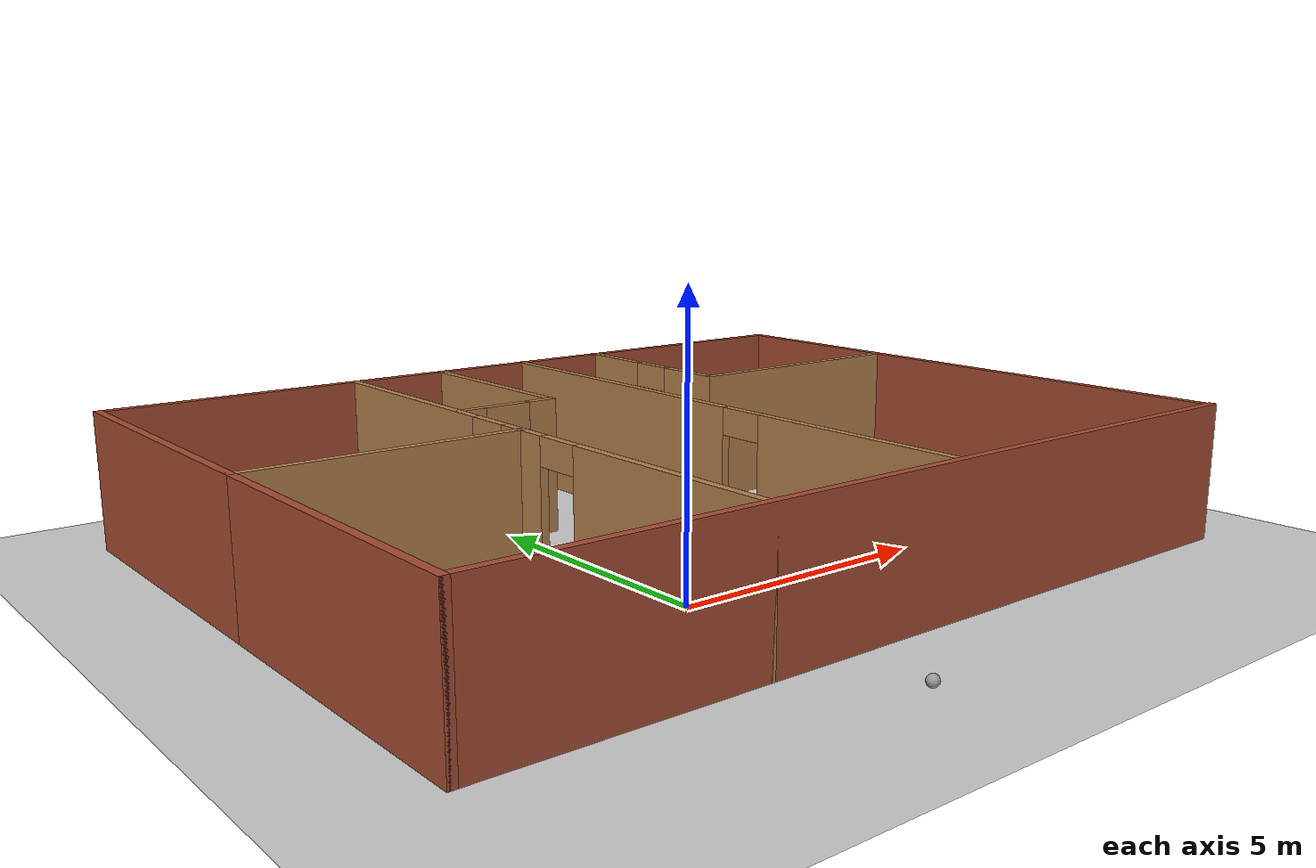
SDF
<sdf version="1.6">
 <world name="default">
  <light name="sun" type="directional">
   <pose>0 0 10 0 -0 0</pose>
   <diffuse>0.8 0.8 0.8 1</diffuse>
   <specular>0.2 0.2 0.2 1</specular>
   <attenuation>
    <range>1000</range>
    <constant>0.9</constant>
    <linear>0.01</linear>
    <quadratic>0.001</quadratic>
   </attenuation>
   <direction>-0.5 0.1 -0.9</direction>
  </light>
  <model name="ground_plane">
   <static>1</static>
   <link name="link">
    <collision name="collision">
     <geometry><plane><normal>0 0 1</normal><size>100 100</size></plane></geometry>
     <surface><friction><ode><mu>100</mu><mu2>50</mu2></ode></friction></surface>
    </collision>
    <visual name="visual">
     <cast_shadows>0</cast_shadows>
     <geometry><plane><normal>0 0 1</normal><size>100 100</size></plane></geometry>
     <material>
      <script><uri>file://media/materials/scripts/gazebo.material</uri><name>Gazebo/Grey</name></script>
     </material>
    </visual>
   </link>
  </model>
  <gravity>0 0 -9.8</gravity>
  <magnetic_field>6e-06 2.3e-05 -4.2e-05</magnetic_field>
  <atmosphere type="adiabatic"/>
  <physics name="default_physics" default="0" type="ode">
   <max_step_size>0.001</max_step_size>
   <real_time_factor>1</real_time_factor>
   <real_time_update_rate>1000</real_time_update_rate>
  </physics>
  <scene><ambient>0.4 0.4 0.4 1</ambient><background>0.7 0.7 0.7 1</background><shadows>1</shadows></scene>
  <spherical_coordinates>
   <surface_model>EARTH_WGS84</surface_model>
   <latitude_deg>0</latitude_deg>
   <longitude_deg>0</longitude_deg>
   <elevation>0</elevation>
   <heading_deg>0</heading_deg>
  </spherical_coordinates>
  <model name="home">
   <pose>1.85688 2.8893 0 0 -0 0</pose>
   <link name="Wall_1">
    <collision name="Wall_1_Collision">
     <geometry><box><size>6.0004 0.15 2.5</size></box></geometry>
     <pose>0 0 1.25 0 -0 0</pose>
    </collision>
    <visual name="Wall_1_Visual">
     <pose>0 0 1.25 0 -0 0</pose>
     <geometry><box><size>6.0004 0.15 2.5</size></box></geometry>
     <material>
      <script><uri>file://media/materials/scripts/gazebo.material</uri><name>Gazebo/Bricks</name></script>
      <ambient>1 1 1 1</ambient>
     </material>
     <meta><layer>0</layer></meta>
    </visual>
    <pose>-7.8 2.9156 0 0 0 -1.5708</pose>
   </link>
   <link name="Wall_12">
    <collision name="Wall_12_Collision">
     <geometry><box><size>4 0.15 2.5</size></box></geometry>
     <pose>0 0 1.25 0 -0 0</pose>
    </collision>
    <visual name="Wall_12_Visual">
     <pose>0 0 1.25 0 -0 0</pose>
     <geometry><box><size>4 0.15 2.5</size></box></geometry>
     <material>
      <script><uri>file://media/materials/scripts/gazebo.material</uri><name>Gazebo/Wood</name></script>
      <ambient>1 1 1 1</ambient>
     </material>
     <meta><layer>0</layer></meta>
    </visual>
    <pose>-1.03717 3.90694 0 0 0 -1.5708</pose>
   </link>
   <link name="Wall_13">
    <pose>-1.96217 1.98194 0 0 -0 3.14159</pose>
    <visual name="Wall_13_Visual_0">
     <pose>-0.71811 0 1.25 0 -0 0</pose>
     <geometry><box><size>0.56378 0.15 2.5</size></box></geometry>
     <material>
      <script><uri>file://media/materials/scripts/gazebo.material</uri><name>Gazebo/Wood</name></script>
      <ambient>1 1 1 1</ambient>
     </material>
     <meta><layer>0</layer></meta>
    </visual>
    <collision name="Wall_13_Collision_0">
     <geometry><box><size>0.56378 0.15 2.5</size></box></geometry>
     <pose>-0.71811 0 1.25 0 -0 0</pose>
    </collision>
    <visual name="Wall_13_Visual_1">
     <pose>0.73189 0 1.25 0 -0 0</pose>
     <geometry><box><size>0.53622 0.15 2.5</size></box></geometry>
     <material>
      <script><uri>file://media/materials/scripts/gazebo.material</uri><name>Gazebo/Wood</name></script>
      <ambient>1 1 1 1</ambient>
     </material>
     <meta><layer>0</layer></meta>
    </visual>
    <collision name="Wall_13_Collision_1">
     <geometry><box><size>0.53622 0.15 2.5</size></box></geometry>
     <pose>0.73189 0 1.25 0 -0 0</pose>
    </collision>
    <visual name="Wall_13_Visual_2">
     <pose>0.01378 0 2.25 0 -0 0</pose>
     <geometry><box><size>0.9 0.15 0.5</size></box></geometry>
     <material>
      <script><uri>file://media/materials/scripts/gazebo.material</uri><name>Gazebo/Wood</name></script>
      <ambient>1 1 1 1</ambient>
     </material>
     <meta><layer>0</layer></meta>
    </visual>
    <collision name="Wall_13_Collision_2">
     <geometry><box><size>0.9 0.15 0.5</size></box></geometry>
     <pose>0.01378 0 2.25 0 -0 0</pose>
    </collision>
   </link>
   <link name="Wall_2">
    <collision name="Wall_2_Collision">
     <geometry><box><size>5 0.15 2.5</size></box></geometry>
     <pose>0 0 1.25 0 -0 0</pose>
    </collision>
    <visual name="Wall_2_Visual">
     <pose>0 0 1.25 0 -0 0</pose>
     <geometry><box><size>5 0.15 2.5</size></box></geometry>
     <material>
      <script><uri>file://media/materials/scripts/gazebo.material</uri><name>Gazebo/Wood</name></script>
      <ambient>1 1 1 1</ambient>
     </material>
     <meta><layer>0</layer></meta>
    </visual>
    <pose>-5.375 -0.009397 0 0 -0 0</pose>
   </link>
   <link name="Wall_21">
    <collision name="Wall_21_Collision">
     <geometry><box><size>11.75 0.15 2.5</size></box></geometry>
     <pose>0 0 1.25 0 -0 0</pose>
    </collision>
    <visual name="Wall_21_Visual">
     <pose>0 0 1.25 0 -0 0</pose>
     <geometry><box><size>11.75 0.15 2.5</size></box></geometry>
     <material>
      <script><uri>file://media/materials/scripts/gazebo.material</uri><name>Gazebo/Bricks</name></script>
      <ambient>1 1 1 1</ambient>
     </material>
     <meta><layer>0</layer></meta>
    </visual>
    <pose>7.74432 0.044867 0 0 0 -1.5708</pose>
   </link>
   <link name="Wall_26">
    <collision name="Wall_26_Collision">
     <geometry><box><size>6 0.15 2.5</size></box></geometry>
     <pose>0 0 1.25 0 -0 0</pose>
    </collision>
    <visual name="Wall_26_Visual">
     <pose>0 0 1.25 0 -0 0</pose>
     <geometry><box><size>6 0.15 2.5</size></box></geometry>
     <material>
      <script><uri>file://media/materials/scripts/gazebo.material</uri><name>Gazebo/Bricks</name></script>
      <ambient>1 1 1 1</ambient>
     </material>
     <meta><layer>0</layer></meta>
    </visual>
    <pose>-7.8 -2.9344 0 0 0 -1.5708</pose>
   </link>
   <link name="Wall_28">
    <collision name="Wall_28_Collision">
     <geometry><box><size>15.75 0.15 2.5</size></box></geometry>
     <pose>0 0 1.25 0 -0 0</pose>
    </collision>
    <visual name="Wall_28_Visual">
     <pose>0 0 1.25 0 -0 0</pose>
     <geometry><box><size>15.75 0.15 2.5</size></box></geometry>
     <material>
      <script><uri>file://media/materials/scripts/gazebo.material</uri><name>Gazebo/Bricks</name></script>
      <ambient>1 1 1 1</ambient>
     </material>
     <meta><layer>0</layer></meta>
    </visual>
    <pose>0 -5.8594 0 0 -0 0</pose>
   </link>
   <link name="Wall_30">
    <pose>-2.95 -2.9344 0 0 0 -1.5708</pose>
    <visual name="Wall_30_Visual_0">
     <pose>-2.64613 0 1.25 0 -0 0</pose>
     <geometry><box><size>0.70775 0.15 2.5</size></box></geometry>
     <material>
      <script><uri>file://media/materials/scripts/gazebo.material</uri><name>Gazebo/Wood</name></script>
      <ambient>1 1 1 1</ambient>
     </material>
     <meta><layer>0</layer></meta>
    </visual>
    <collision name="Wall_30_Collision_0">
     <geometry><box><size>0.70775 0.15 2.5</size></box></geometry>
     <pose>-2.64613 0 1.25 0 -0 0</pose>
    </collision>
    <visual name="Wall_30_Visual_1">
     <pose>0.803875 0 1.25 0 -0 0</pose>
     <geometry><box><size>4.39225 0.15 2.5</size></box></geometry>
     <material>
      <script><uri>file://media/materials/scripts/gazebo.material</uri><name>Gazebo/Wood</name></script>
      <ambient>1 1 1 1</ambient>
     </material>
     <meta><layer>0</layer></meta>
    </visual>
    <collision name="Wall_30_Collision_1">
     <geometry><box><size>4.39225 0.15 2.5</size></box></geometry>
     <pose>0.803875 0 1.25 0 -0 0</pose>
    </collision>
    <visual name="Wall_30_Visual_2">
     <pose>-1.84225 0 2.25 0 -0 0</pose>
     <geometry><box><size>0.9 0.15 0.5</size></box></geometry>
     <material>
      <script><uri>file://media/materials/scripts/gazebo.material</uri><name>Gazebo/Wood</name></script>
      <ambient>1 1 1 1</ambient>
     </material>
     <meta><layer>0</layer></meta>
    </visual>
    <collision name="Wall_30_Collision_2">
     <geometry><box><size>0.9 0.15 0.5</size></box></geometry>
     <pose>-1.84225 0 2.25 0 -0 0</pose>
    </collision>
   </link>
   <link name="Wall_34">
    <pose>0.909947 0.059397 0 0 0 -1.5708</pose>
    <visual name="Wall_34_Visual_0">
     <pose>-2.58673 0 1.25 0 -0 0</pose>
     <geometry><box><size>6.57654 0.15 2.5</size></box></geometry>
     <material>
      <script><uri>file://media/materials/scripts/gazebo.material</uri><name>Gazebo/Wood</name></script>
      <ambient>1 1 1 1</ambient>
     </material>
     <meta><layer>0</layer></meta>
    </visual>
    <collision name="Wall_34_Collision_0">
     <geometry><box><size>6.57654 0.15 2.5</size></box></geometry>
     <pose>-2.58673 0 1.25 0 -0 0</pose>
    </collision>
    <visual name="Wall_34_Visual_1">
     <pose>3.73827 0 1.25 0 -0 0</pose>
     <geometry><box><size>4.27346 0.15 2.5</size></box></geometry>
     <material>
      <script><uri>file://media/materials/scripts/gazebo.material</uri><name>Gazebo/Wood</name></script>
      <ambient>1 1 1 1</ambient>
     </material>
     <meta><layer>0</layer></meta>
    </visual>
    <collision name="Wall_34_Collision_1">
     <geometry><box><size>4.27346 0.15 2.5</size></box></geometry>
     <pose>3.73827 0 1.25 0 -0 0</pose>
    </collision>
    <visual name="Wall_34_Visual_2">
     <pose>1.15154 0 2.25 0 -0 0</pose>
     <geometry><box><size>0.9 0.15 0.5</size></box></geometry>
     <material>
      <script><uri>file://media/materials/scripts/gazebo.material</uri><name>Gazebo/Wood</name></script>
      <ambient>1 1 1 1</ambient>
     </material>
     <meta><layer>0</layer></meta>
    </visual>
    <collision name="Wall_34_Collision_2">
     <geometry><box><size>0.9 0.15 0.5</size></box></geometry>
     <pose>1.15154 0 2.25 0 -0 0</pose>
    </collision>
   </link>
   <link name="Wall_38">
    <pose>2.83947 3.92239 0 0 0 -1.5708</pose>
    <visual name="Wall_38_Visual_0">
     <pose>-1.1744 0 1.25 0 -0 0</pose>
     <geometry><box><size>1.6512 0.15 2.5</size></box></geometry>
     <material>
      <script><uri>file://media/materials/scripts/gazebo.material</uri><name>Gazebo/Wood</name></script>
      <ambient>1 1 1 1</ambient>
     </material>
     <meta><layer>0</layer></meta>
    </visual>
    <collision name="Wall_38_Collision_0">
     <geometry><box><size>1.6512 0.15 2.5</size></box></geometry>
     <pose>-1.1744 0 1.25 0 -0 0</pose>
    </collision>
    <visual name="Wall_38_Visual_1">
     <pose>1.2756 0 1.25 0 -0 0</pose>
     <geometry><box><size>1.4488 0.15 2.5</size></box></geometry>
     <material>
      <script><uri>file://media/materials/scripts/gazebo.material</uri><name>Gazebo/Wood</name></script>
      <ambient>1 1 1 1</ambient>
     </material>
     <meta><layer>0</layer></meta>
    </visual>
    <collision name="Wall_38_Collision_1">
     <geometry><box><size>1.4488 0.15 2.5</size></box></geometry>
     <pose>1.2756 0 1.25 0 -0 0</pose>
    </collision>
    <visual name="Wall_38_Visual_2">
     <pose>0.101202 0 2.25 0 -0 0</pose>
     <geometry><box><size>0.9 0.15 0.5</size></box></geometry>
     <material>
      <script><uri>file://media/materials/scripts/gazebo.material</uri><name>Gazebo/Wood</name></script>
      <ambient>1 1 1 1</ambient>
     </material>
     <meta><layer>0</layer></meta>
    </visual>
    <collision name="Wall_38_Collision_2">
     <geometry><box><size>0.9 0.15 0.5</size></box></geometry>
     <pose>0.101202 0 2.25 0 -0 0</pose>
    </collision>
   </link>
   <link name="Wall_39">
    <collision name="Wall_39_Collision">
     <geometry><box><size>5 0.15 2.5</size></box></geometry>
     <pose>0 0 1.25 0 -0 0</pose>
    </collision>
    <visual name="Wall_39_Visual">
     <pose>0 0 1.25 0 -0 0</pose>
     <geometry><box><size>5 0.15 2.5</size></box></geometry>
     <material>
      <script><uri>file://media/materials/scripts/gazebo.material</uri><name>Gazebo/Wood</name></script>
      <ambient>1 1 1 1</ambient>
     </material>
     <meta><layer>0</layer></meta>
    </visual>
    <pose>5.26447 1.99739 0 0 -0 0</pose>
   </link>
   <link name="Wall_4">
    <collision name="Wall_4_Collision">
     <geometry><box><size>5 0.15 2.5</size></box></geometry>
     <pose>0 0 1.25 0 -0 0</pose>
    </collision>
    <visual name="Wall_4_Visual">
     <pose>0 0 1.25 0 -0 0</pose>
     <geometry><box><size>5 0.15 2.5</size></box></geometry>
     <material>
      <script><uri>file://media/materials/scripts/gazebo.material</uri><name>Gazebo/Bricks</name></script>
      <ambient>1 1 1 1</ambient>
     </material>
     <meta><layer>0</layer></meta>
    </visual>
    <pose>-5.35785 5.8406 0 0 -0 0</pose>
   </link>
   <link name="Wall_5">
    <pose>-2.95 2.9156 0 0 0 -1.5708</pose>
    <visual name="Wall_5_Visual_0">
     <pose>-0.736256 0 1.25 0 -0 0</pose>
     <geometry><box><size>4.52789 0.15 2.5</size></box></geometry>
     <material>
      <script><uri>file://media/materials/scripts/gazebo.material</uri><name>Gazebo/Wood</name></script>
      <ambient>1 1 1 1</ambient>
     </material>
     <meta><layer>0</layer></meta>
    </visual>
    <collision name="Wall_5_Collision_0">
     <geometry><box><size>4.52789 0.15 2.5</size></box></geometry>
     <pose>-0.736256 0 1.25 0 -0 0</pose>
    </collision>
    <visual name="Wall_5_Visual_1">
     <pose>2.71395 0 1.25 0 -0 0</pose>
     <geometry><box><size>0.572511 0.15 2.5</size></box></geometry>
     <material>
      <script><uri>file://media/materials/scripts/gazebo.material</uri><name>Gazebo/Wood</name></script>
      <ambient>1 1 1 1</ambient>
     </material>
     <meta><layer>0</layer></meta>
    </visual>
    <collision name="Wall_5_Collision_1">
     <geometry><box><size>0.572511 0.15 2.5</size></box></geometry>
     <pose>2.71395 0 1.25 0 -0 0</pose>
    </collision>
    <visual name="Wall_5_Visual_2">
     <pose>1.97769 0 2.25 0 -0 0</pose>
     <geometry><box><size>0.9 0.15 0.5</size></box></geometry>
     <material>
      <script><uri>file://media/materials/scripts/gazebo.material</uri><name>Gazebo/Wood</name></script>
      <ambient>1 1 1 1</ambient>
     </material>
     <meta><layer>0</layer></meta>
    </visual>
    <collision name="Wall_5_Collision_2">
     <geometry><box><size>0.9 0.15 0.5</size></box></geometry>
     <pose>1.97769 0 2.25 0 -0 0</pose>
    </collision>
   </link>
   <link name="Wall_7">
    <collision name="Wall_7_Collision">
     <geometry><box><size>10.75 0.15 2.5</size></box></geometry>
     <pose>0 0 1.25 0 -0 0</pose>
    </collision>
    <visual name="Wall_7_Visual">
     <pose>0 0 1.25 0 -0 0</pose>
     <geometry><box><size>10.75 0.15 2.5</size></box></geometry>
     <material>
      <script><uri>file://media/materials/scripts/gazebo.material</uri><name>Gazebo/Bricks</name></script>
      <ambient>1 1 1 1</ambient>
     </material>
     <meta><layer>0</layer></meta>
    </visual>
    <pose>2.35 5.8406 0 0 -0 0</pose>
   </link>
   <static>1</static>
  </model>
  <model name="my_ball">
   <link name="link_0">
    <inertial>
     <mass>1</mass>
     <inertia><ixx>0.1</ixx><ixy>0</ixy><ixz>0</ixz><iyy>0.1</iyy><iyz>0</iyz><izz>0.1</izz></inertia>
    </inertial>
    <visual name="visual">
     <geometry><sphere><radius>0.1</radius></sphere></geometry>
     <material>
      <lighting>1</lighting>
      <script><uri>file://media/materials/scripts/gazebo.material</uri><name>Gazebo/Grey</name></script>
      <shader type="pixel"><normal_map>__default__</normal_map></shader>
      <ambient>1 1 1 1</ambient>
      <diffuse>1 1 1 1</diffuse>
      <specular>1 1 1 1</specular>
      <emissive>1 1 1 1</emissive>
     </material>
    </visual>
    <collision name="collision">
     <geometry><sphere><radius>0.1</radius></sphere></geometry>
     <surface>
      <friction>
       <ode><mu>1</mu><mu2>1</mu2><fdir1>0 0 0</fdir1><slip1>0</slip1><slip2>0</slip2></ode>
       <torsional>
        <coefficient>1</coefficient>
        <patch_radius>0</patch_radius>
        <surface_radius>0</surface_radius>
        <use_patch_radius>1</use_patch_radius>
        <ode><slip>0</slip></ode>
       </torsional>
      </friction>
      <bounce><restitution_coefficient>0</restitution_coefficient><threshold>1e+06</threshold></bounce>
      <contact>
       <collide_without_contact>0</collide_without_contact>
       <collide_without_contact_bitmask>1</collide_without_contact_bitmask>
       <collide_bitmask>1</collide_bitmask>
       <ode>
        <soft_cfm>0</soft_cfm>
        <soft_erp>0.2</soft_erp>
        <kp>1e+13</kp>
        <kd>1</kd>
        <max_vel>0.01</max_vel>
        <min_depth>0</min_depth>
       </ode>
       <bullet>
        <split_impulse>1</split_impulse>
        <split_impulse_penetration_threshold>-0.01</split_impulse_penetration_threshold>
        <soft_cfm>0</soft_cfm>
        <soft_erp>0.2</soft_erp>
        <kp>1e+13</kp>
        <kd>1</kd>
       </bullet>
      </contact>
     </surface>
    </collision>
   </link>
   <static>0</static>
   <pose>0.463848 -4.48064 0.1 0 -0 0</pose>
  </model>
 </world>
</sdf>
